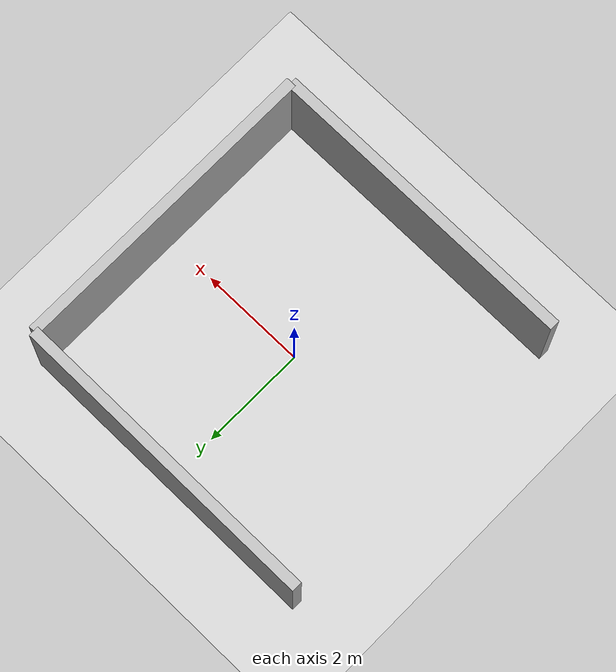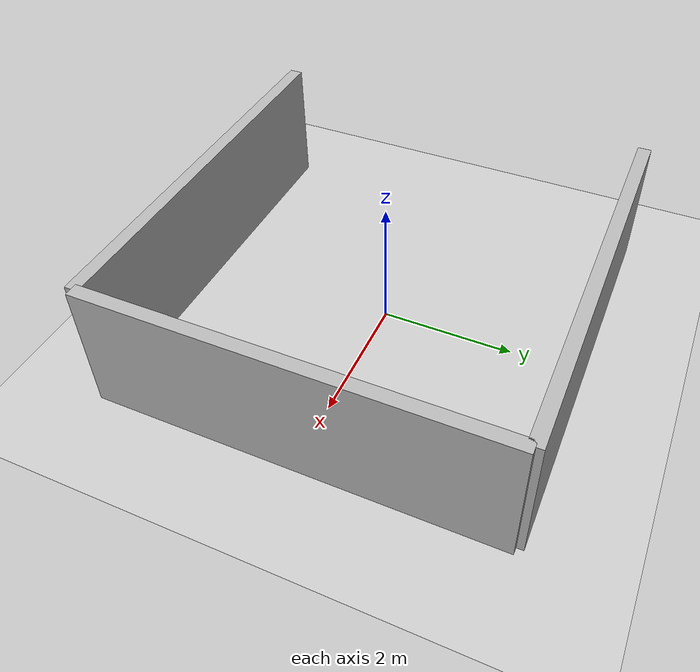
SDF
<?xml version="1.0" ?>

<sdf version="1.11">

  <world name="empty_world">

    <physics name="1ms" type="ignored">
      <max_step_size>0.001</max_step_size>
      <real_time_factor>1.0</real_time_factor>
    </physics>

    <plugin
      filename="gz-sim-physics-system"
      name="gz::sim::systems::Physics"/>

    <plugin
      filename="gz-sim-user-commands-system"
      name="gz::sim::systems::UserCommands"/>

    <plugin
      filename="gz-sim-scene-broadcaster-system"
      name="gz::sim::systems::SceneBroadcaster"/>

    <plugin
      filename="gz-sim-sensors-system"
      name="gz::sim::systems::Sensors">
      <render_engine>ogre2</render_engine>
    </plugin>

    <light type="directional" name="sun">
      <cast_shadows>true</cast_shadows>
      <pose>0 0 10 0 0 0</pose>
      <diffuse>0.8 0.8 0.8 1</diffuse>
      <specular>0.2 0.2 0.2 1</specular>
      <direction>-0.5 0.1 -0.9</direction>
    </light>

    <model name="ground_plane">
      <static>true</static>

      <link name="link">

        <collision name="collision">
          <geometry>
            <plane>
              <normal>0 0 1</normal>
              <size>100 100</size>
            </plane>
          </geometry>
        </collision>

        <visual name="visual">
          <geometry>
            <plane>
              <normal>0 0 1</normal>
              <size>100 100</size>
            </plane>
          </geometry>
        </visual>

      </link>
    </model>

    <!-- Front Wall -->

    <model name="wall_front">
      <static>true</static>

      <pose>3 0 1 0 0 0</pose>

      <link name="link">

        <collision name="collision">
          <geometry>
            <box>
              <size>0.2 6 2</size>
            </box>
          </geometry>
        </collision>

        <visual name="visual">
          <geometry>
            <box>
              <size>0.2 6 2</size>
            </box>
          </geometry>
        </visual>

      </link>
    </model>

    <!-- Left Wall -->

    <model name="wall_left">
      <static>true</static>

      <pose>0 3 1 0 0 0</pose>

      <link name="link">

        <collision name="collision">
          <geometry>
            <box>
              <size>6 0.2 2</size>
            </box>
          </geometry>
        </collision>

        <visual name="visual">
          <geometry>
            <box>
              <size>6 0.2 2</size>
            </box>
          </geometry>
        </visual>

      </link>
    </model>

    <!-- Right Wall -->

    <model name="wall_right">
      <static>true</static>

      <pose>0 -3 1 0 0 0</pose>

      <link name="link">

        <collision name="collision">
          <geometry>
            <box>
              <size>6 0.2 2</size>
            </box>
          </geometry>
        </collision>

        <visual name="visual">
          <geometry>
            <box>
              <size>6 0.2 2</size>
            </box>
          </geometry>
        </visual>

      </link>
    </model>

  </world>

</sdf>
